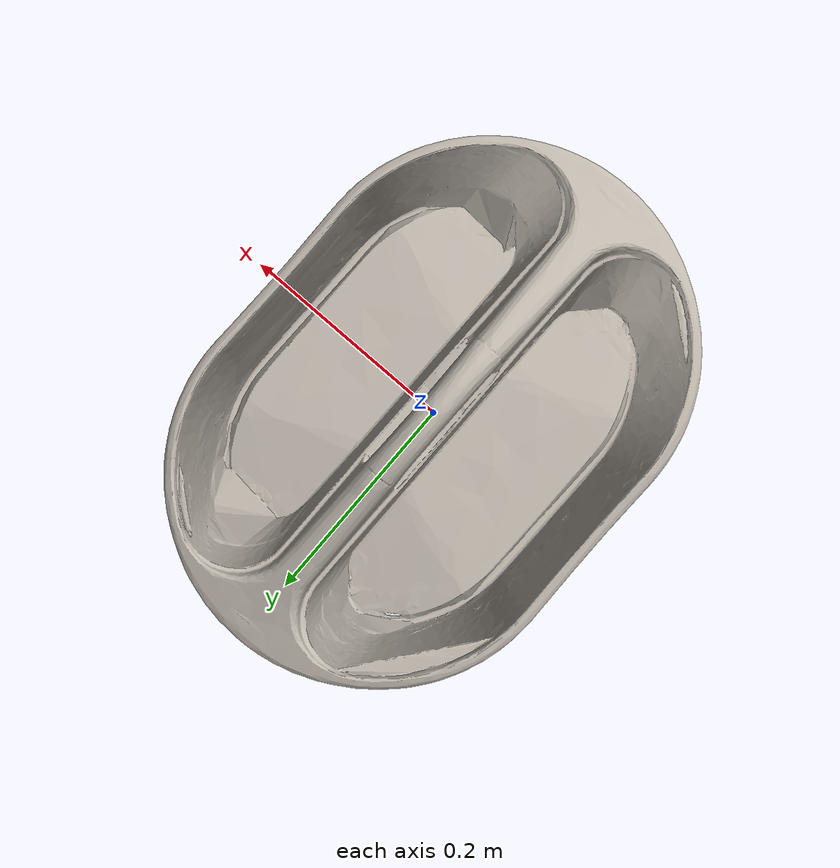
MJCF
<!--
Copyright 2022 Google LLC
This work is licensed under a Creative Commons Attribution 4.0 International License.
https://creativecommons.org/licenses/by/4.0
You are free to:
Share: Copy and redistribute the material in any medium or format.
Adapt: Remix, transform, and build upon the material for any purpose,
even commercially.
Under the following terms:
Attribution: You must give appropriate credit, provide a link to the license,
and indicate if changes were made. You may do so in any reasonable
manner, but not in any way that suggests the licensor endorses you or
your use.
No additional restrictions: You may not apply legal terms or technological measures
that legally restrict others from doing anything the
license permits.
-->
<mujoco model="Sterilite_Caddy_Blue_Sky_17_58_x_12_58_x_9_14">
  <compiler assetdir="meshes" texturedir="materials/textures"/>

  <asset>
    <texture type="2d" name="texture" file="texture.png"/>
    <material name="texture" texture="texture"/>

    <mesh file="model.obj"/>
    <mesh file="coacd_part_000.obj"/>
    <mesh file="coacd_part_001.obj"/>
    <mesh file="coacd_part_002.obj"/>
    <mesh file="coacd_part_003.obj"/>
    <mesh file="coacd_part_004.obj"/>
    <mesh file="coacd_part_005.obj"/>
    <mesh file="coacd_part_006.obj"/>
    <mesh file="coacd_part_007.obj"/>
    <mesh file="coacd_part_008.obj"/>
    <mesh file="coacd_part_009.obj"/>
    <mesh file="coacd_part_010.obj"/>
    <mesh file="coacd_part_011.obj"/>
    <mesh file="coacd_part_012.obj"/>
    <mesh file="coacd_part_013.obj"/>
    <mesh file="coacd_part_014.obj"/>
    <mesh file="coacd_part_015.obj"/>
    <mesh file="coacd_part_016.obj"/>
    <mesh file="coacd_part_017.obj"/>
    <mesh file="coacd_part_018.obj"/>
    <mesh file="coacd_part_019.obj"/>
    <mesh file="coacd_part_020.obj"/>
    <mesh file="coacd_part_021.obj"/>
    <mesh file="coacd_part_022.obj"/>
    <mesh file="coacd_part_023.obj"/>
    <mesh file="coacd_part_024.obj"/>
    <mesh file="coacd_part_025.obj"/>
    <mesh file="coacd_part_026.obj"/>
    <mesh file="coacd_part_027.obj"/>
    <mesh file="coacd_part_028.obj"/>
    <mesh file="coacd_part_029.obj"/>
    <mesh file="coacd_part_030.obj"/>
    <mesh file="coacd_part_031.obj"/>
    <mesh file="coacd_part_032.obj"/>
    <mesh file="coacd_part_033.obj"/>
    <mesh file="coacd_part_034.obj"/>
    <mesh file="coacd_part_035.obj"/>
    <mesh file="coacd_part_036.obj"/>
    <mesh file="coacd_part_037.obj"/>
    <mesh file="coacd_part_038.obj"/>
    <mesh file="coacd_part_039.obj"/>
    <mesh file="coacd_part_040.obj"/>
    <mesh file="coacd_part_041.obj"/>
    <mesh file="coacd_part_042.obj"/>
    <mesh file="coacd_part_043.obj"/>
    <mesh file="coacd_part_044.obj"/>
    <mesh file="coacd_part_045.obj"/>
    <mesh file="coacd_part_046.obj"/>
    <mesh file="coacd_part_047.obj"/>
    <mesh file="coacd_part_048.obj"/>
    <mesh file="coacd_part_049.obj"/>
    <mesh file="coacd_part_050.obj"/>
    <mesh file="coacd_part_051.obj"/>
    <mesh file="coacd_part_052.obj"/>
    <mesh file="coacd_part_053.obj"/>
    <mesh file="coacd_part_054.obj"/>
    <mesh file="coacd_part_055.obj"/>
    <mesh file="coacd_part_056.obj"/>
    <mesh file="coacd_part_057.obj"/>
    <mesh file="coacd_part_058.obj"/>
    <mesh file="coacd_part_059.obj"/>
    <mesh file="coacd_part_060.obj"/>
    <mesh file="coacd_part_061.obj"/>
    <mesh file="coacd_part_062.obj"/>
    <mesh file="coacd_part_063.obj"/>
    <mesh file="coacd_part_064.obj"/>
    <mesh file="coacd_part_065.obj"/>
    <mesh file="coacd_part_066.obj"/>
    <mesh file="coacd_part_067.obj"/>
    <mesh file="coacd_part_068.obj"/>
    <mesh file="coacd_part_069.obj"/>
    <mesh file="coacd_part_070.obj"/>
    <mesh file="coacd_part_071.obj"/>
    <mesh file="coacd_part_072.obj"/>
    <mesh file="coacd_part_073.obj"/>
    <mesh file="coacd_part_074.obj"/>
    <mesh file="coacd_part_075.obj"/>
    <mesh file="coacd_part_076.obj"/>
    <mesh file="coacd_part_077.obj"/>
    <mesh file="coacd_part_078.obj"/>
    <mesh file="coacd_part_079.obj"/>
    <mesh file="coacd_part_080.obj"/>
    <mesh file="coacd_part_081.obj"/>
  </asset>

  <default>
    <default class="Sterilite_Caddy_Blue_Sky_17_58_x_12_58_x_9_14">
      <default class="visual_Sterilite_Caddy_Blue_Sky_17_58_x_12_58_x_9_14">
        <geom type="mesh" group="2" density="200" contype="0" conaffinity="0" material="texture"/>
      </default>
      <default class="collision_Sterilite_Caddy_Blue_Sky_17_58_x_12_58_x_9_14">
        <geom type="mesh" group="3" mass="0" density="0" solref=".004 1" friction="1.0 0.01 0.01" condim="6"/>
      </default>
    </default>
  </default>

  <worldbody>
    <body childclass="Sterilite_Caddy_Blue_Sky_17_58_x_12_58_x_9_14" pos="0 0 0">
      <freejoint/>
      <site name="left_containment" type="box" pos="-0.064 0.0 0.05" size="0.05 0.14 0.05" rgba="1.0 1.0 1.0 1.0" group="5"/>
      <site name="right_containment" type="box" pos="0.07 0.0 0.05" size="0.05 0.14 0.05" rgba="1.0 1.0 1.0 1.0" group="5"/>
      <geom class="visual_Sterilite_Caddy_Blue_Sky_17_58_x_12_58_x_9_14" mesh="model"/>
      <geom class="collision_Sterilite_Caddy_Blue_Sky_17_58_x_12_58_x_9_14" mesh="coacd_part_000" rgba="0.375 0.95 0.73 1"/>
      <geom class="collision_Sterilite_Caddy_Blue_Sky_17_58_x_12_58_x_9_14" mesh="coacd_part_001" rgba="0.599 0.16 0.16 1"/>
      <geom class="collision_Sterilite_Caddy_Blue_Sky_17_58_x_12_58_x_9_14" mesh="coacd_part_002" rgba="0.058 0.87 0.60 1"/>
      <geom class="collision_Sterilite_Caddy_Blue_Sky_17_58_x_12_58_x_9_14" mesh="coacd_part_003" rgba="0.708 0.02 0.97 1"/>
      <geom class="collision_Sterilite_Caddy_Blue_Sky_17_58_x_12_58_x_9_14" mesh="coacd_part_004" rgba="0.832 0.21 0.18 1"/>
      <geom class="collision_Sterilite_Caddy_Blue_Sky_17_58_x_12_58_x_9_14" mesh="coacd_part_005" rgba="0.183 0.30 0.52 1"/>
      <geom class="collision_Sterilite_Caddy_Blue_Sky_17_58_x_12_58_x_9_14" mesh="coacd_part_006" rgba="0.432 0.29 0.61 1"/>
      <geom class="collision_Sterilite_Caddy_Blue_Sky_17_58_x_12_58_x_9_14" mesh="coacd_part_007" rgba="0.139 0.29 0.37 1"/>
      <geom class="collision_Sterilite_Caddy_Blue_Sky_17_58_x_12_58_x_9_14" mesh="coacd_part_008" rgba="0.456 0.79 0.20 1"/>
      <geom class="collision_Sterilite_Caddy_Blue_Sky_17_58_x_12_58_x_9_14" mesh="coacd_part_009" rgba="0.514 0.59 0.05 1"/>
      <geom class="collision_Sterilite_Caddy_Blue_Sky_17_58_x_12_58_x_9_14" mesh="coacd_part_010" rgba="0.608 0.17 0.07 1"/>
      <geom class="collision_Sterilite_Caddy_Blue_Sky_17_58_x_12_58_x_9_14" mesh="coacd_part_011" rgba="0.949 0.97 0.81 1"/>
      <geom class="collision_Sterilite_Caddy_Blue_Sky_17_58_x_12_58_x_9_14" mesh="coacd_part_012" rgba="0.305 0.10 0.68 1"/>
      <geom class="collision_Sterilite_Caddy_Blue_Sky_17_58_x_12_58_x_9_14" mesh="coacd_part_013" rgba="0.440 0.12 0.50 1"/>
      <geom class="collision_Sterilite_Caddy_Blue_Sky_17_58_x_12_58_x_9_14" mesh="coacd_part_014" rgba="0.034 0.91 0.26 1"/>
      <geom class="collision_Sterilite_Caddy_Blue_Sky_17_58_x_12_58_x_9_14" mesh="coacd_part_015" rgba="0.663 0.31 0.52 1"/>
      <geom class="collision_Sterilite_Caddy_Blue_Sky_17_58_x_12_58_x_9_14" mesh="coacd_part_016" rgba="0.547 0.18 0.97 1"/>
      <geom class="collision_Sterilite_Caddy_Blue_Sky_17_58_x_12_58_x_9_14" mesh="coacd_part_017" rgba="0.775 0.94 0.89 1"/>
      <geom class="collision_Sterilite_Caddy_Blue_Sky_17_58_x_12_58_x_9_14" mesh="coacd_part_018" rgba="0.598 0.92 0.09 1"/>
      <geom class="collision_Sterilite_Caddy_Blue_Sky_17_58_x_12_58_x_9_14" mesh="coacd_part_019" rgba="0.196 0.05 0.33 1"/>
      <geom class="collision_Sterilite_Caddy_Blue_Sky_17_58_x_12_58_x_9_14" mesh="coacd_part_020" rgba="0.389 0.27 0.83 1"/>
      <geom class="collision_Sterilite_Caddy_Blue_Sky_17_58_x_12_58_x_9_14" mesh="coacd_part_021" rgba="0.357 0.28 0.54 1"/>
      <geom class="collision_Sterilite_Caddy_Blue_Sky_17_58_x_12_58_x_9_14" mesh="coacd_part_022" rgba="0.141 0.80 0.07 1"/>
      <geom class="collision_Sterilite_Caddy_Blue_Sky_17_58_x_12_58_x_9_14" mesh="coacd_part_023" rgba="0.987 0.77 0.20 1"/>
      <geom class="collision_Sterilite_Caddy_Blue_Sky_17_58_x_12_58_x_9_14" mesh="coacd_part_024" rgba="0.006 0.82 0.71 1"/>
      <geom class="collision_Sterilite_Caddy_Blue_Sky_17_58_x_12_58_x_9_14" mesh="coacd_part_025" rgba="0.729 0.77 0.07 1"/>
      <geom class="collision_Sterilite_Caddy_Blue_Sky_17_58_x_12_58_x_9_14" mesh="coacd_part_026" rgba="0.358 0.12 0.86 1"/>
      <geom class="collision_Sterilite_Caddy_Blue_Sky_17_58_x_12_58_x_9_14" mesh="coacd_part_027" rgba="0.623 0.33 0.06 1"/>
      <geom class="collision_Sterilite_Caddy_Blue_Sky_17_58_x_12_58_x_9_14" mesh="coacd_part_028" rgba="0.311 0.33 0.73 1"/>
      <geom class="collision_Sterilite_Caddy_Blue_Sky_17_58_x_12_58_x_9_14" mesh="coacd_part_029" rgba="0.638 0.89 0.47 1"/>
      <geom class="collision_Sterilite_Caddy_Blue_Sky_17_58_x_12_58_x_9_14" mesh="coacd_part_030" rgba="0.120 0.71 0.76 1"/>
      <geom class="collision_Sterilite_Caddy_Blue_Sky_17_58_x_12_58_x_9_14" mesh="coacd_part_031" rgba="0.561 0.77 0.49 1"/>
      <geom class="collision_Sterilite_Caddy_Blue_Sky_17_58_x_12_58_x_9_14" mesh="coacd_part_032" rgba="0.523 0.43 0.03 1"/>
      <geom class="collision_Sterilite_Caddy_Blue_Sky_17_58_x_12_58_x_9_14" mesh="coacd_part_033" rgba="0.108 0.03 0.64 1"/>
      <geom class="collision_Sterilite_Caddy_Blue_Sky_17_58_x_12_58_x_9_14" mesh="coacd_part_034" rgba="0.314 0.51 0.91 1"/>
      <geom class="collision_Sterilite_Caddy_Blue_Sky_17_58_x_12_58_x_9_14" mesh="coacd_part_035" rgba="0.249 0.41 0.76 1"/>
      <geom class="collision_Sterilite_Caddy_Blue_Sky_17_58_x_12_58_x_9_14" mesh="coacd_part_036" rgba="0.229 0.08 0.29 1"/>
      <geom class="collision_Sterilite_Caddy_Blue_Sky_17_58_x_12_58_x_9_14" mesh="coacd_part_037" rgba="0.161 0.93 0.81 1"/>
      <geom class="collision_Sterilite_Caddy_Blue_Sky_17_58_x_12_58_x_9_14" mesh="coacd_part_038" rgba="0.633 0.87 0.80 1"/>
      <geom class="collision_Sterilite_Caddy_Blue_Sky_17_58_x_12_58_x_9_14" mesh="coacd_part_039" rgba="0.187 0.89 0.54 1"/>
      <geom class="collision_Sterilite_Caddy_Blue_Sky_17_58_x_12_58_x_9_14" mesh="coacd_part_040" rgba="0.807 0.90 0.32 1"/>
      <geom class="collision_Sterilite_Caddy_Blue_Sky_17_58_x_12_58_x_9_14" mesh="coacd_part_041" rgba="0.110 0.23 0.43 1"/>
      <geom class="collision_Sterilite_Caddy_Blue_Sky_17_58_x_12_58_x_9_14" mesh="coacd_part_042" rgba="0.818 0.86 0.01 1"/>
      <geom class="collision_Sterilite_Caddy_Blue_Sky_17_58_x_12_58_x_9_14" mesh="coacd_part_043" rgba="0.511 0.42 0.22 1"/>
      <geom class="collision_Sterilite_Caddy_Blue_Sky_17_58_x_12_58_x_9_14" mesh="coacd_part_044" rgba="0.120 0.34 0.94 1"/>
      <geom class="collision_Sterilite_Caddy_Blue_Sky_17_58_x_12_58_x_9_14" mesh="coacd_part_045" rgba="0.323 0.52 0.70 1"/>
      <geom class="collision_Sterilite_Caddy_Blue_Sky_17_58_x_12_58_x_9_14" mesh="coacd_part_046" rgba="0.364 0.97 0.96 1"/>
      <geom class="collision_Sterilite_Caddy_Blue_Sky_17_58_x_12_58_x_9_14" mesh="coacd_part_047" rgba="0.252 0.50 0.30 1"/>
      <geom class="collision_Sterilite_Caddy_Blue_Sky_17_58_x_12_58_x_9_14" mesh="coacd_part_048" rgba="0.285 0.04 0.61 1"/>
      <geom class="collision_Sterilite_Caddy_Blue_Sky_17_58_x_12_58_x_9_14" mesh="coacd_part_049" rgba="0.503 0.05 0.28 1"/>
      <geom class="collision_Sterilite_Caddy_Blue_Sky_17_58_x_12_58_x_9_14" mesh="coacd_part_050" rgba="0.908 0.24 0.14 1"/>
      <geom class="collision_Sterilite_Caddy_Blue_Sky_17_58_x_12_58_x_9_14" mesh="coacd_part_051" rgba="0.489 0.99 0.24 1"/>
      <geom class="collision_Sterilite_Caddy_Blue_Sky_17_58_x_12_58_x_9_14" mesh="coacd_part_052" rgba="0.672 0.76 0.24 1"/>
      <geom class="collision_Sterilite_Caddy_Blue_Sky_17_58_x_12_58_x_9_14" mesh="coacd_part_053" rgba="0.728 0.37 0.63 1"/>
      <geom class="collision_Sterilite_Caddy_Blue_Sky_17_58_x_12_58_x_9_14" mesh="coacd_part_054" rgba="0.634 0.54 0.09 1"/>
      <geom class="collision_Sterilite_Caddy_Blue_Sky_17_58_x_12_58_x_9_14" mesh="coacd_part_055" rgba="0.835 0.32 0.19 1"/>
      <geom class="collision_Sterilite_Caddy_Blue_Sky_17_58_x_12_58_x_9_14" mesh="coacd_part_056" rgba="0.041 0.59 0.68 1"/>
      <geom class="collision_Sterilite_Caddy_Blue_Sky_17_58_x_12_58_x_9_14" mesh="coacd_part_057" rgba="0.017 0.51 0.23 1"/>
      <geom class="collision_Sterilite_Caddy_Blue_Sky_17_58_x_12_58_x_9_14" mesh="coacd_part_058" rgba="0.645 0.17 0.69 1"/>
      <geom class="collision_Sterilite_Caddy_Blue_Sky_17_58_x_12_58_x_9_14" mesh="coacd_part_059" rgba="0.387 0.94 0.14 1"/>
      <geom class="collision_Sterilite_Caddy_Blue_Sky_17_58_x_12_58_x_9_14" mesh="coacd_part_060" rgba="0.341 0.11 0.92 1"/>
      <geom class="collision_Sterilite_Caddy_Blue_Sky_17_58_x_12_58_x_9_14" mesh="coacd_part_061" rgba="0.877 0.26 0.66 1"/>
      <geom class="collision_Sterilite_Caddy_Blue_Sky_17_58_x_12_58_x_9_14" mesh="coacd_part_062" rgba="0.817 0.56 0.53 1"/>
      <geom class="collision_Sterilite_Caddy_Blue_Sky_17_58_x_12_58_x_9_14" mesh="coacd_part_063" rgba="0.242 0.09 0.90 1"/>
      <geom class="collision_Sterilite_Caddy_Blue_Sky_17_58_x_12_58_x_9_14" mesh="coacd_part_064" rgba="0.900 0.63 0.34 1"/>
      <geom class="collision_Sterilite_Caddy_Blue_Sky_17_58_x_12_58_x_9_14" mesh="coacd_part_065" rgba="0.349 0.73 0.90 1"/>
      <geom class="collision_Sterilite_Caddy_Blue_Sky_17_58_x_12_58_x_9_14" mesh="coacd_part_066" rgba="0.887 0.78 0.64 1"/>
      <geom class="collision_Sterilite_Caddy_Blue_Sky_17_58_x_12_58_x_9_14" mesh="coacd_part_067" rgba="0.084 0.16 0.90 1"/>
      <geom class="collision_Sterilite_Caddy_Blue_Sky_17_58_x_12_58_x_9_14" mesh="coacd_part_068" rgba="0.606 0.01 0.10 1"/>
      <geom class="collision_Sterilite_Caddy_Blue_Sky_17_58_x_12_58_x_9_14" mesh="coacd_part_069" rgba="0.664 0.01 0.16 1"/>
      <geom class="collision_Sterilite_Caddy_Blue_Sky_17_58_x_12_58_x_9_14" mesh="coacd_part_070" rgba="0.549 0.69 0.65 1"/>
      <geom class="collision_Sterilite_Caddy_Blue_Sky_17_58_x_12_58_x_9_14" mesh="coacd_part_071" rgba="0.224 0.71 0.24 1"/>
      <geom class="collision_Sterilite_Caddy_Blue_Sky_17_58_x_12_58_x_9_14" mesh="coacd_part_072" rgba="0.325 0.75 0.65 1"/>
      <geom class="collision_Sterilite_Caddy_Blue_Sky_17_58_x_12_58_x_9_14" mesh="coacd_part_073" rgba="0.849 0.66 0.57 1"/>
      <geom class="collision_Sterilite_Caddy_Blue_Sky_17_58_x_12_58_x_9_14" mesh="coacd_part_074" rgba="0.094 0.37 0.27 1"/>
      <geom class="collision_Sterilite_Caddy_Blue_Sky_17_58_x_12_58_x_9_14" mesh="coacd_part_075" rgba="0.244 0.97 0.39 1"/>
      <geom class="collision_Sterilite_Caddy_Blue_Sky_17_58_x_12_58_x_9_14" mesh="coacd_part_076" rgba="0.892 0.63 0.79 1"/>
      <geom class="collision_Sterilite_Caddy_Blue_Sky_17_58_x_12_58_x_9_14" mesh="coacd_part_077" rgba="0.503 0.58 0.49 1"/>
      <geom class="collision_Sterilite_Caddy_Blue_Sky_17_58_x_12_58_x_9_14" mesh="coacd_part_078" rgba="0.195 0.72 0.28 1"/>
      <geom class="collision_Sterilite_Caddy_Blue_Sky_17_58_x_12_58_x_9_14" mesh="coacd_part_079" rgba="0.024 0.65 0.18 1"/>
      <geom class="collision_Sterilite_Caddy_Blue_Sky_17_58_x_12_58_x_9_14" mesh="coacd_part_080" rgba="0.940 0.95 0.91 1"/>
      <geom class="collision_Sterilite_Caddy_Blue_Sky_17_58_x_12_58_x_9_14" mesh="coacd_part_081" rgba="0.370 0.02 0.93 1"/>
    </body>
  </worldbody>
</mujoco>
